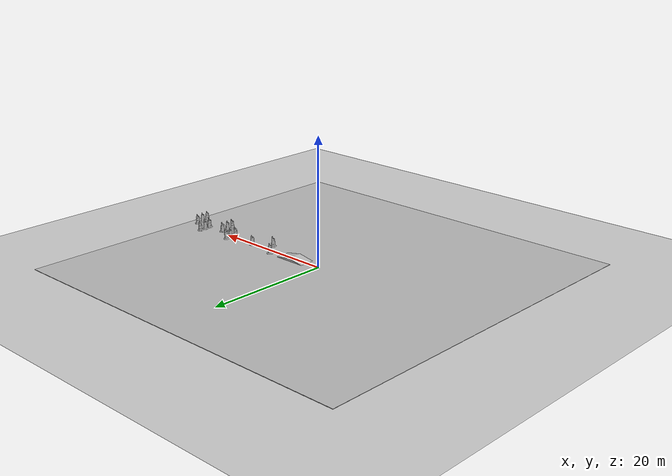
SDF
<sdf version="1.7">
 <world name="default">
  <spherical_coordinates>
   <surface_model>EARTH_WGS84</surface_model>
   <latitude_deg>38.161479</latitude_deg>
   <longitude_deg>-122.454630</longitude_deg>
   <elevation>488.0</elevation>
   <heading_deg>180</heading_deg>
  </spherical_coordinates>
  <light name="sun" type="directional">
   <pose>0 0 10 0 -0 0</pose>
   <diffuse>0.8 0.8 0.8 1</diffuse>
   <specular>0.2 0.2 0.2 1</specular>
   <attenuation>
    <range>1000</range>
    <constant>0.9</constant>
    <linear>0.01</linear>
    <quadratic>0.001</quadratic>
   </attenuation>
   <direction>-0.5 0.1 -0.9</direction>
   <spot><inner_angle>0</inner_angle><outer_angle>0</outer_angle><falloff>0</falloff></spot>
  </light>
  <model name="ground_plane">
   <static>1</static>
   <link name="link">
    <collision name="collision">
     <geometry><plane><normal>0 0 1</normal><size>100 100</size></plane></geometry>
     <surface>
      <contact><collide_bitmask>65535</collide_bitmask></contact>
      <friction><ode><mu>100</mu><mu2>50</mu2></ode></friction>
     </surface>
    </collision>
    <visual name="visual">
     <cast_shadows>0</cast_shadows>
     <geometry><plane><normal>0 0 1</normal><size>100 100</size></plane></geometry>
     <material>
      <script><uri>file://media/materials/scripts/gazebo.material</uri><name>Gazebo/Grey</name></script>
     </material>
    </visual>
   </link>
  </model>
  <gravity>0 0 -9.8</gravity>
  <magnetic_field>6e-06 2.3e-05 -4.2e-05</magnetic_field>
  <atmosphere type="adiabatic"/>
  <physics type="ode">
   <max_step_size>0.001</max_step_size>
   <real_time_factor>1</real_time_factor>
   <real_time_update_rate>1000</real_time_update_rate>
  </physics>
  <scene><ambient>0.4 0.4 0.4 1</ambient><background>0.7 0.7 0.7 1</background><shadows>1</shadows></scene>
  <spherical_coordinates>
   <surface_model>EARTH_WGS84</surface_model>
   <latitude_deg>0</latitude_deg>
   <longitude_deg>0</longitude_deg>
   <elevation>0</elevation>
   <heading_deg>0</heading_deg>
  </spherical_coordinates>
  <model name="igvc_track2">
   <static>1</static>
   <link name="link">
    <collision name="collision"><geometry><box><size>60 59.9999 0.05</size></box></geometry></collision>
    <visual name="visual">
     <cast_shadows>0</cast_shadows>
     <geometry><box><size>60 59.9999 0.05</size></box></geometry>
     <material>
      <script>
       <uri>model://igvc_track1/materials/scripts</uri>
       <uri>model://igvc_track1/materials/textures</uri>
       <name>vrc/ground</name>
      </script>
     </material>
    </visual>
   </link>
   <link name="link2">
    <collision name="collision"><geometry><box><size>60 59.9999 0.05</size></box></geometry></collision>
    <visual name="visual">
     <cast_shadows>0</cast_shadows>
     <geometry><box><size>60 59.9999 0.07</size></box></geometry>
     <material>
      <script>
       <uri>model://igvc_track1/materials/scripts</uri>
       <uri>model://igvc_track1/materials/textures</uri>
       <name>vrc/track</name>
      </script>
     </material>
    </visual>
   </link>
   <pose>-0.424749 -0.714416 0 0 -0 0</pose>
  </model>
  <model name="Construction Barrel">
   <link name="link">
    <inertial>
     <pose>0 0 0.4 0 -0 0</pose>
     <mass>500</mass>
     <inertia><ixx>51.2096</ixx><iyy>51.2096</iyy><izz>25</izz><ixy>0</ixy><ixz>0</ixz><iyz>0</iyz></inertia>
    </inertial>
    <collision name="collision">
     <geometry><mesh><uri>model://construction_barrel/meshes/construction_barrel.dae</uri></mesh></geometry>
    </collision>
    <visual name="visual">
     <geometry><mesh><uri>model://construction_barrel/meshes/construction_barrel.dae</uri></mesh></geometry>
    </visual>
   </link>
   <pose>11.3309 -1.62128 0.024999 4e-06 0 1.2e-05</pose>
  </model>
  <model name="Construction Barrel_0">
   <link name="link">
    <inertial>
     <pose>0 0 0.4 0 -0 0</pose>
     <mass>500</mass>
     <inertia><ixx>51.2096</ixx><iyy>51.2096</iyy><izz>25</izz><ixy>0</ixy><ixz>0</ixz><iyz>0</iyz></inertia>
    </inertial>
    <collision name="collision">
     <geometry><mesh><uri>model://construction_barrel/meshes/construction_barrel.dae</uri></mesh></geometry>
    </collision>
    <visual name="visual">
     <geometry><mesh><uri>model://construction_barrel/meshes/construction_barrel.dae</uri></mesh></geometry>
    </visual>
   </link>
   <pose>27.966 -2.45723 0.037728 0.024963 -0.003265 0.010113</pose>
   <collision name="collision">
    <geometry><mesh><uri>model://ramp/meshes/ramp.dae</uri><scale>1 1 1</scale></mesh></geometry>
   </collision>
   <visual name="visual">
    <geometry><mesh><uri>model://ramp/meshes/ramp.dae</uri><scale>1 1 1</scale></mesh></geometry>
   </visual>
   <pose>5 0 0 0 0 0</pose>
  </model>
  <model name="Construction Barrel_1">
   <link name="link">
    <inertial>
     <pose>0 0 0.4 0 -0 0</pose>
     <mass>500</mass>
     <inertia><ixx>51.2096</ixx><iyy>51.2096</iyy><izz>25</izz><ixy>0</ixy><ixz>0</ixz><iyz>0</iyz></inertia>
    </inertial>
    <collision name="collision">
     <geometry><mesh><uri>model://construction_barrel/meshes/construction_barrel.dae</uri></mesh></geometry>
    </collision>
    <visual name="visual">
     <geometry><mesh><uri>model://construction_barrel/meshes/construction_barrel.dae</uri></mesh></geometry>
    </visual>
   </link>
   <pose>27.9403 -1.45626 0.039922 0.029369 0.00386 -0.025061</pose>
  </model>
  <model name="ramp">
   <static>true</static>
   <link name="link">
    <collision name="collision">
     <geometry><mesh><uri>model://ramp/meshes/ramp.dae</uri><scale>1 1 1</scale></mesh></geometry>
    </collision>
    <visual name="visual">
     <geometry><mesh><uri>model://ramp/meshes/ramp.dae</uri><scale>1 1 1</scale></mesh></geometry>
    </visual>
   </link>
   <pose>5 0 0 0 0 0</pose>
  </model>
  <model name="Construction Barrel_2">
   <link name="link">
    <inertial>
     <pose>0 0 0.4 0 -0 0</pose>
     <mass>500</mass>
     <inertia><ixx>51.2096</ixx><iyy>51.2096</iyy><izz>25</izz><ixy>0</ixy><ixz>0</ixz><iyz>0</iyz></inertia>
    </inertial>
    <collision name="collision">
     <geometry><mesh><uri>model://construction_barrel/meshes/construction_barrel.dae</uri></mesh></geometry>
    </collision>
    <visual name="visual">
     <geometry><mesh><uri>model://construction_barrel/meshes/construction_barrel.dae</uri></mesh></geometry>
    </visual>
   </link>
   <pose>27.9817 -0.470255 0.02499 2e-05 1.1e-05 -0.03536</pose>
  </model>
  <model name="Construction Barrel_3">
   <link name="link">
    <inertial>
     <pose>0 0 0.4 0 -0 0</pose>
     <mass>500</mass>
     <inertia><ixx>51.2096</ixx><iyy>51.2096</iyy><izz>25</izz><ixy>0</ixy><ixz>0</ixz><iyz>0</iyz></inertia>
    </inertial>
    <collision name="collision">
     <geometry><mesh><uri>model://construction_barrel/meshes/construction_barrel.dae</uri></mesh></geometry>
    </collision>
    <visual name="visual">
     <geometry><mesh><uri>model://construction_barrel/meshes/construction_barrel.dae</uri></mesh></geometry>
    </visual>
   </link>
   <pose>25.1062 1.40198 0.039759 -0.028948 0.003755 -0.000791</pose>
  </model>
  <model name="Construction Barrel_4">
   <link name="link">
    <inertial>
     <pose>0 0 0.4 0 -0 0</pose>
     <mass>500</mass>
     <inertia><ixx>51.2096</ixx><iyy>51.2096</iyy><izz>25</izz><ixy>0</ixy><ixz>0</ixz><iyz>0</iyz></inertia>
    </inertial>
    <collision name="collision">
     <geometry><mesh><uri>model://construction_barrel/meshes/construction_barrel.dae</uri></mesh></geometry>
    </collision>
    <visual name="visual">
     <geometry><mesh><uri>model://construction_barrel/meshes/construction_barrel.dae</uri></mesh></geometry>
    </visual>
   </link>
   <pose>25.0634 0.416185 0.039666 -0.030419 -0.003714 -0.023262</pose>
  </model>
  <model name="Construction Barrel_5">
   <link name="link">
    <inertial>
     <pose>0 0 0.4 0 -0 0</pose>
     <mass>500</mass>
     <inertia><ixx>51.2096</ixx><iyy>51.2096</iyy><izz>25</izz><ixy>0</ixy><ixz>0</ixz><iyz>0</iyz></inertia>
    </inertial>
    <collision name="collision">
     <geometry><mesh><uri>model://construction_barrel/meshes/construction_barrel.dae</uri></mesh></geometry>
    </collision>
    <visual name="visual">
     <geometry><mesh><uri>model://construction_barrel/meshes/construction_barrel.dae</uri></mesh></geometry>
    </visual>
   </link>
   <pose>25.1647 -0.559649 0.024768 -0.000377 2.2e-05 0.164563</pose>
  </model>
  <model name="Construction Barrel_6">
   <link name="link">
    <inertial>
     <pose>0 0 0.4 0 -0 0</pose>
     <mass>500</mass>
     <inertia><ixx>51.2096</ixx><iyy>51.2096</iyy><izz>25</izz><ixy>0</ixy><ixz>0</ixz><iyz>0</iyz></inertia>
    </inertial>
    <collision name="collision">
     <geometry><mesh><uri>model://construction_barrel/meshes/construction_barrel.dae</uri></mesh></geometry>
    </collision>
    <visual name="visual">
     <geometry><mesh><uri>model://construction_barrel/meshes/construction_barrel.dae</uri></mesh></geometry>
    </visual>
   </link>
   <pose>22.063 -2.71277 0.024999 5e-06 -0 -3.2e-05</pose>
  </model>
  <model name="Construction Barrel_7">
   <link name="link">
    <inertial>
     <pose>0 0 0.4 0 -0 0</pose>
     <mass>500</mass>
     <inertia><ixx>51.2096</ixx><iyy>51.2096</iyy><izz>25</izz><ixy>0</ixy><ixz>0</ixz><iyz>0</iyz></inertia>
    </inertial>
    <collision name="collision">
     <geometry><mesh><uri>model://construction_barrel/meshes/construction_barrel.dae</uri></mesh></geometry>
    </collision>
    <visual name="visual">
     <geometry><mesh><uri>model://construction_barrel/meshes/construction_barrel.dae</uri></mesh></geometry>
    </visual>
   </link>
   <pose>21.9894 -1.64277 0.036548 0.022673 -0.002917 -0.004089</pose>
  </model>
  <model name="Construction Barrel_8">
   <link name="link">
    <inertial>
     <pose>0 0 0.4 0 -0 0</pose>
     <mass>500</mass>
     <inertia><ixx>51.2096</ixx><iyy>51.2096</iyy><izz>25</izz><ixy>0</ixy><ixz>0</ixz><iyz>0</iyz></inertia>
    </inertial>
    <collision name="collision">
     <geometry><mesh><uri>model://construction_barrel/meshes/construction_barrel.dae</uri></mesh></geometry>
    </collision>
    <visual name="visual">
     <geometry><mesh><uri>model://construction_barrel/meshes/construction_barrel.dae</uri></mesh></geometry>
    </visual>
   </link>
   <pose>22.0481 -0.6397 0.025381 0.000962 -3.5e-05 -0.007271</pose>
  </model>
  <model name="Construction Barrel_9">
   <link name="link">
    <inertial>
     <pose>0 0 0.4 0 -0 0</pose>
     <mass>500</mass>
     <inertia><ixx>51.2096</ixx><iyy>51.2096</iyy><izz>25</izz><ixy>0</ixy><ixz>0</ixz><iyz>0</iyz></inertia>
    </inertial>
    <collision name="collision">
     <geometry><mesh><uri>model://construction_barrel/meshes/construction_barrel.dae</uri></mesh></geometry>
    </collision>
    <visual name="visual">
     <geometry><mesh><uri>model://construction_barrel/meshes/construction_barrel.dae</uri></mesh></geometry>
    </visual>
   </link>
   <pose>19.001 1.21245 0.078481 -0.10508 0.013807 0.076061</pose>
  </model>
  <model name="Construction Barrel_10">
   <link name="link">
    <inertial>
     <pose>0 0 0.4 0 -0 0</pose>
     <mass>500</mass>
     <inertia><ixx>51.2096</ixx><iyy>51.2096</iyy><izz>25</izz><ixy>0</ixy><ixz>0</ixz><iyz>0</iyz></inertia>
    </inertial>
    <collision name="collision">
     <geometry><mesh><uri>model://construction_barrel/meshes/construction_barrel.dae</uri></mesh></geometry>
    </collision>
    <visual name="visual">
     <geometry><mesh><uri>model://construction_barrel/meshes/construction_barrel.dae</uri></mesh></geometry>
    </visual>
   </link>
   <pose>18.9592 0.36728 0.047849 -0.044825 0.005898 0.045885</pose>
  </model>
  <model name="Construction Barrel_11">
   <link name="link">
    <inertial>
     <pose>0 0 0.4 0 -0 0</pose>
     <mass>500</mass>
     <inertia><ixx>51.2096</ixx><iyy>51.2096</iyy><izz>25</izz><ixy>0</ixy><ixz>0</ixz><iyz>0</iyz></inertia>
    </inertial>
    <collision name="collision">
     <geometry><mesh><uri>model://construction_barrel/meshes/construction_barrel.dae</uri></mesh></geometry>
    </collision>
    <visual name="visual">
     <geometry><mesh><uri>model://construction_barrel/meshes/construction_barrel.dae</uri></mesh></geometry>
    </visual>
   </link>
   <pose>18.9396 -0.585216 0.024186 -0.0007 3e-06 0.025345</pose>
  </model>
  <model name="Construction Barrel_12">
   <link name="link">
    <inertial>
     <pose>0 0 0.4 0 -0 0</pose>
     <mass>500</mass>
     <inertia><ixx>51.2096</ixx><iyy>51.2096</iyy><izz>25</izz><ixy>0</ixy><ixz>0</ixz><iyz>0</iyz></inertia>
    </inertial>
    <collision name="collision">
     <geometry><mesh><uri>model://construction_barrel/meshes/construction_barrel.dae</uri></mesh></geometry>
    </collision>
    <visual name="visual">
     <geometry><mesh><uri>model://construction_barrel/meshes/construction_barrel.dae</uri></mesh></geometry>
    </visual>
   </link>
   <pose>14.1508 0.16449 0.024999 4e-06 -0 -4e-05</pose>
  </model>
  <model name="Construction Barrel_13">
   <link name="link">
    <inertial>
     <pose>0 0 0.4 0 -0 0</pose>
     <mass>500</mass>
     <inertia><ixx>51.2096</ixx><iyy>51.2096</iyy><izz>25</izz><ixy>0</ixy><ixz>0</ixz><iyz>0</iyz></inertia>
    </inertial>
    <collision name="collision">
     <geometry><mesh><uri>model://construction_barrel/meshes/construction_barrel.dae</uri></mesh></geometry>
    </collision>
    <visual name="visual">
     <geometry><mesh><uri>model://construction_barrel/meshes/construction_barrel.dae</uri></mesh></geometry>
    </visual>
   </link>
   <pose>9.45069 0.868559 0.024999 4e-06 -0 -4.2e-05</pose>
  </model>
 </world>
</sdf>
